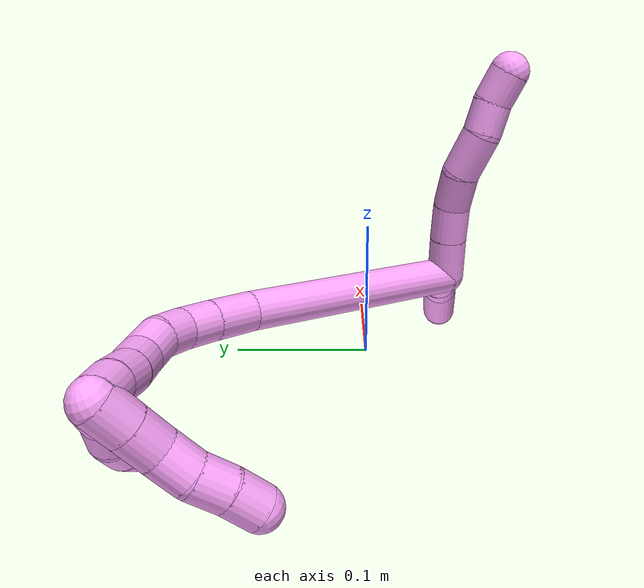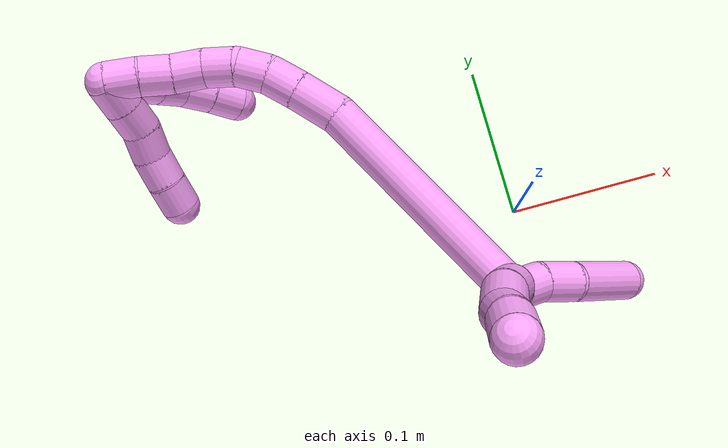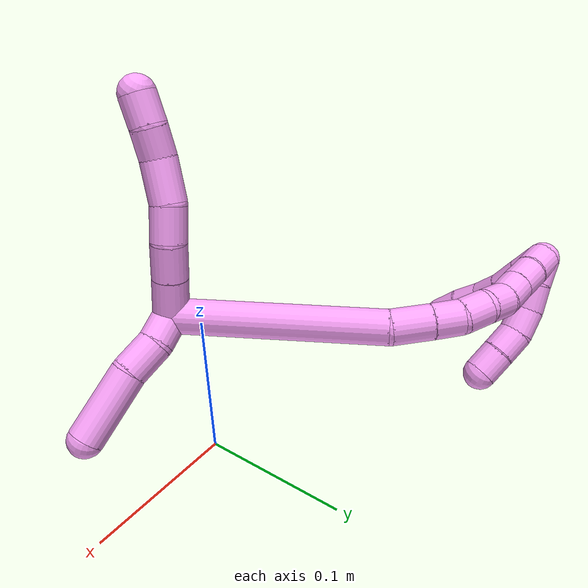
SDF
<sdf version="1.7">
 <world name="default">
  <model name="photoneo_s_sensor">
   <static>1</static>
   <pose>0 0 2 1.57079 1.57079 3.14159</pose>
   <link name="link">
    <inertial><mass>0.1</mass></inertial>
    <sensor name="sensor" type="depth">
     <update_rate>30</update_rate>
     <camera>
      <horizontal_fov>1.22</horizontal_fov>
      <image><width>1920</width><height>1200</height><format>B8G8R8</format></image>
      <clip><near>0.1</near><far>4</far></clip>
      <depth_camera><output>points</output></depth_camera>
     </camera>
     <plugin name="camera_plugin" filename="libgazebo_ros_depth_camera.so">
      <baseline>0.2</baseline>
      <alwaysOn>1</alwaysOn>
      <updateRate>0.0</updateRate>
      <cameraName>camera_ir</cameraName>
      <imageTopicName>/camera/color/image_raw</imageTopicName>
      <cameraInfoTopicName>/camera/color/camera_info</cameraInfoTopicName>
      <depthImageTopicName>/camera/depth/image_raw</depthImageTopicName>
      <depthImageCameraInfoTopicName>/camera/depth/camera_info</depthImageCameraInfoTopicName>
      <pointCloudTopicName>/camera/depth/points</pointCloudTopicName>
      <frameName>fr_optical</frameName>
      <pointCloudCutoff>0.1</pointCloudCutoff>
      <pointCloudCutoffMax>2.0</pointCloudCutoffMax>
      <distortionK1>0</distortionK1>
      <distortionK2>0</distortionK2>
      <distortionK3>0</distortionK3>
      <distortionT1>0</distortionT1>
      <distortionT2>0</distortionT2>
      <CxPrime>0</CxPrime>
      <Cx>0</Cx>
      <Cy>0</Cy>
      <focalLength>0</focalLength>
      <hackBaseline>0</hackBaseline>
     </plugin>
    </sensor>
   </link>
  </model>
  <model name="bin">
   <static>1</static>
   <link name="bottom">
    <collision name="collision-bottom">
     <pose>0 0 -0.01 0 -0 0</pose>
     <geometry><box><size>0.8 0.6 0.02</size></box></geometry>
     <surface>
      <friction><ode><mu>100</mu><mu2>100</mu2></ode></friction>
      <contact><collide_bitmask>65535</collide_bitmask></contact>
     </surface>
    </collision>
   </link>
   <link name="west_wall">
    <collision name="collision-west_wall">
     <pose>-0.41 0 0.1 0 -0 0</pose>
     <geometry><box><size>0.02 0.6 0.2</size></box></geometry>
     <surface>
      <friction><ode><mu>100</mu><mu2>100</mu2></ode></friction>
      <contact><collide_bitmask>65535</collide_bitmask></contact>
     </surface>
    </collision>
   </link>
   <link name="east_wall">
    <collision name="collision-east_wall">
     <pose>0.41 0 0.1 0 -0 0</pose>
     <geometry><box><size>0.02 0.6 0.2</size></box></geometry>
     <surface>
      <friction><ode><mu>100</mu><mu2>100</mu2></ode></friction>
      <contact><collide_bitmask>65535</collide_bitmask></contact>
     </surface>
    </collision>
   </link>
   <link name="south_wall">
    <collision name="collision-south_wall">
     <pose>0 -0.31 0.1 0 -0 0</pose>
     <geometry><box><size>0.8 0.02 0.2</size></box></geometry>
     <surface>
      <friction><ode><mu>100</mu><mu2>100</mu2></ode></friction>
      <contact><collide_bitmask>65535</collide_bitmask></contact>
     </surface>
    </collision>
   </link>
   <link name="north_wall">
    <collision name="collision-north_wall">
     <pose>0 0.31 0.1 0 -0 0</pose>
     <geometry><box><size>0.8 0.02 0.2</size></box></geometry>
     <surface>
      <friction><ode><mu>100</mu><mu2>100</mu2></ode></friction>
      <contact><collide_bitmask>65535</collide_bitmask></contact>
     </surface>
    </collision>
   </link>
  </model>
  <model name="4">
   <static>0</static>
   <link name="4">
    <collision name="collision-cylinder-e_1_2_8">
     <pose>0.000207 -0.005579 0.013295 0.397347 0.014352 0.00289</pose>
     <geometry><cylinder><radius>0.0125</radius><length>0.028839</length></cylinder></geometry>
     <surface>
      <friction><ode><mu>1.16</mu><mu2>1.16</mu2><slip1>0</slip1><slip2>0</slip2></ode></friction>
      <contact><ode><kp>1e+06</kp><kd>1</kd><max_vel>0</max_vel><min_depth>0.001</min_depth></ode></contact>
     </surface>
    </collision>
    <visual name="visual-cylinder-e_1_2_8">
     <pose>0.000207 -0.005579 0.013295 0.397347 0.014352 0.00289</pose>
     <geometry><cylinder><radius>0.0125</radius><length>0.028839</length></cylinder></geometry>
     <material><ambient>1 0.65098 0.996078 1</ambient></material>
    </visual>
    <collision name="collision-cylinder-e_2_8_9">
     <pose>0.000483 -0.016383 0.037907 0.432435 0.005512 0.001211</pose>
     <geometry><cylinder><radius>0.0125</radius><length>0.02493</length></cylinder></geometry>
     <surface>
      <friction><ode><mu>1.16</mu><mu2>1.16</mu2><slip1>0</slip1><slip2>0</slip2></ode></friction>
      <contact><ode><kp>1e+06</kp><kd>1</kd><max_vel>0</max_vel><min_depth>0.001</min_depth></ode></contact>
     </surface>
    </collision>
    <visual name="visual-cylinder-e_2_8_9">
     <pose>0.000483 -0.016383 0.037907 0.432435 0.005512 0.001211</pose>
     <geometry><cylinder><radius>0.0125</radius><length>0.02493</length></cylinder></geometry>
     <material><ambient>1 0.65098 0.996078 1</ambient></material>
    </visual>
    <collision name="collision-cylinder-e_3_9_10">
     <pose>-0.001339 -0.027899 0.059771 0.537954 -0.152757 -0.042184</pose>
     <geometry><cylinder><radius>0.0125</radius><length>0.024852</length></cylinder></geometry>
     <surface>
      <friction><ode><mu>1.16</mu><mu2>1.16</mu2><slip1>0</slip1><slip2>0</slip2></ode></friction>
      <contact><ode><kp>1e+06</kp><kd>1</kd><max_vel>0</max_vel><min_depth>0.001</min_depth></ode></contact>
     </surface>
    </collision>
    <visual name="visual-cylinder-e_3_9_10">
     <pose>-0.001339 -0.027899 0.059771 0.537954 -0.152757 -0.042184</pose>
     <geometry><cylinder><radius>0.0125</radius><length>0.024852</length></cylinder></geometry>
     <material><ambient>1 0.65098 0.996078 1</ambient></material>
    </visual>
    <collision name="collision-cylinder-e_4_10_11">
     <pose>-0.00445 -0.04479 0.080931 0.784715 -0.081159 -0.0336</pose>
     <geometry><cylinder><radius>0.0125</radius><length>0.030098</length></cylinder></geometry>
     <surface>
      <friction><ode><mu>1.16</mu><mu2>1.16</mu2><slip1>0</slip1><slip2>0</slip2></ode></friction>
      <contact><ode><kp>1e+06</kp><kd>1</kd><max_vel>0</max_vel><min_depth>0.001</min_depth></ode></contact>
     </surface>
    </collision>
    <visual name="visual-cylinder-e_4_10_11">
     <pose>-0.00445 -0.04479 0.080931 0.784715 -0.081159 -0.0336</pose>
     <geometry><cylinder><radius>0.0125</radius><length>0.030098</length></cylinder></geometry>
     <material><ambient>1 0.65098 0.996078 1</ambient></material>
    </visual>
    <collision name="collision-cylinder-e_5_11_12">
     <pose>-0.004251 -0.06166 0.099539 0.665087 0.138763 0.047992</pose>
     <geometry><cylinder><radius>0.0125</radius><length>0.020518</length></cylinder></geometry>
     <surface>
      <friction><ode><mu>1.16</mu><mu2>1.16</mu2><slip1>0</slip1><slip2>0</slip2></ode></friction>
      <contact><ode><kp>1e+06</kp><kd>1</kd><max_vel>0</max_vel><min_depth>0.001</min_depth></ode></contact>
     </surface>
    </collision>
    <visual name="visual-cylinder-e_5_11_12">
     <pose>-0.004251 -0.06166 0.099539 0.665087 0.138763 0.047992</pose>
     <geometry><cylinder><radius>0.0125</radius><length>0.020518</length></cylinder></geometry>
     <material><ambient>1 0.65098 0.996078 1</ambient></material>
    </visual>
    <collision name="collision-cylinder-e_6_12_6">
     <pose>-0.002544 -0.075629 0.114493 0.835848 0.027783 0.012339</pose>
     <geometry><cylinder><radius>0.0125</radius><length>0.020763</length></cylinder></geometry>
     <surface>
      <friction><ode><mu>1.16</mu><mu2>1.16</mu2><slip1>0</slip1><slip2>0</slip2></ode></friction>
      <contact><ode><kp>1e+06</kp><kd>1</kd><max_vel>0</max_vel><min_depth>0.001</min_depth></ode></contact>
     </surface>
    </collision>
    <visual name="visual-cylinder-e_6_12_6">
     <pose>-0.002544 -0.075629 0.114493 0.835848 0.027783 0.012339</pose>
     <geometry><cylinder><radius>0.0125</radius><length>0.020763</length></cylinder></geometry>
     <material><ambient>1 0.65098 0.996078 1</ambient></material>
    </visual>
    <collision name="collision-cylinder-e_1_2_13">
     <pose>0.008205 0.003647 -0.006215 -2.6109 0.850172 -2.0603</pose>
     <geometry><cylinder><radius>0.0125</radius><length>0.02184</length></cylinder></geometry>
     <surface>
      <friction><ode><mu>1.16</mu><mu2>1.16</mu2><slip1>0</slip1><slip2>0</slip2></ode></friction>
      <contact><ode><kp>1e+06</kp><kd>1</kd><max_vel>0</max_vel><min_depth>0.001</min_depth></ode></contact>
     </surface>
    </collision>
    <visual name="visual-cylinder-e_1_2_13">
     <pose>0.008205 0.003647 -0.006215 -2.6109 0.850172 -2.0603</pose>
     <geometry><cylinder><radius>0.0125</radius><length>0.02184</length></cylinder></geometry>
     <material><ambient>1 0.65098 0.996078 1</ambient></material>
    </visual>
    <collision name="collision-cylinder-e_2_13_14">
     <pose>0.026449 0.008272 -0.020481 -3.02067 0.891233 -2.88948</pose>
     <geometry><cylinder><radius>0.0125</radius><length>0.025811</length></cylinder></geometry>
     <surface>
      <friction><ode><mu>1.16</mu><mu2>1.16</mu2><slip1>0</slip1><slip2>0</slip2></ode></friction>
      <contact><ode><kp>1e+06</kp><kd>1</kd><max_vel>0</max_vel><min_depth>0.001</min_depth></ode></contact>
     </surface>
    </collision>
    <visual name="visual-cylinder-e_2_13_14">
     <pose>0.026449 0.008272 -0.020481 -3.02067 0.891233 -2.88948</pose>
     <geometry><cylinder><radius>0.0125</radius><length>0.025811</length></cylinder></geometry>
     <material><ambient>1 0.65098 0.996078 1</ambient></material>
    </visual>
    <collision name="collision-cylinder-e_3_14_5">
     <pose>0.053337 0.014221 -0.047935 -2.89084 0.699377 -2.47608</pose>
     <geometry><cylinder><radius>0.0125</radius><length>0.052348</length></cylinder></geometry>
     <surface>
      <friction><ode><mu>1.16</mu><mu2>1.16</mu2><slip1>0</slip1><slip2>0</slip2></ode></friction>
      <contact><ode><kp>1e+06</kp><kd>1</kd><max_vel>0</max_vel><min_depth>0.001</min_depth></ode></contact>
     </surface>
    </collision>
    <visual name="visual-cylinder-e_3_14_5">
     <pose>0.053337 0.014221 -0.047935 -2.89084 0.699377 -2.47608</pose>
     <geometry><cylinder><radius>0.0125</radius><length>0.052348</length></cylinder></geometry>
     <material><ambient>1 0.65098 0.996078 1</ambient></material>
    </visual>
    <collision name="collision-cylinder-e_1_2_15">
     <pose>-0.036134 0.058239 0.030623 -1.08671 -0.502198 0.307424</pose>
     <geometry><cylinder><radius>0.0125</radius><length>0.150135</length></cylinder></geometry>
     <surface>
      <friction><ode><mu>1.16</mu><mu2>1.16</mu2><slip1>0</slip1><slip2>0</slip2></ode></friction>
      <contact><ode><kp>1e+06</kp><kd>1</kd><max_vel>0</max_vel><min_depth>0.001</min_depth></ode></contact>
     </surface>
    </collision>
    <visual name="visual-cylinder-e_1_2_15">
     <pose>-0.036134 0.058239 0.030623 -1.08671 -0.502198 0.307424</pose>
     <geometry><cylinder><radius>0.0125</radius><length>0.150135</length></cylinder></geometry>
     <material><ambient>1 0.65098 0.996078 1</ambient></material>
    </visual>
    <collision name="collision-cylinder-e_2_15_16">
     <pose>-0.081989 0.125194 0.06742 -0.954464 -0.738347 0.394929</pose>
     <geometry><cylinder><radius>0.0125</radius><length>0.028886</length></cylinder></geometry>
     <surface>
      <friction><ode><mu>1.16</mu><mu2>1.16</mu2><slip1>0</slip1><slip2>0</slip2></ode></friction>
      <contact><ode><kp>1e+06</kp><kd>1</kd><max_vel>0</max_vel><min_depth>0.001</min_depth></ode></contact>
     </surface>
    </collision>
    <visual name="visual-cylinder-e_2_15_16">
     <pose>-0.081989 0.125194 0.06742 -0.954464 -0.738347 0.394929</pose>
     <geometry><cylinder><radius>0.0125</radius><length>0.028886</length></cylinder></geometry>
     <material><ambient>1 0.65098 0.996078 1</ambient></material>
    </visual>
    <collision name="collision-cylinder-e_3_16_17">
     <pose>-0.099053 0.139904 0.077893 -0.948634 -0.783175 0.4178</pose>
     <geometry><cylinder><radius>0.0125</radius><length>0.020816</length></cylinder></geometry>
     <surface>
      <friction><ode><mu>1.16</mu><mu2>1.16</mu2><slip1>0</slip1><slip2>0</slip2></ode></friction>
      <contact><ode><kp>1e+06</kp><kd>1</kd><max_vel>0</max_vel><min_depth>0.001</min_depth></ode></contact>
     </surface>
    </collision>
    <visual name="visual-cylinder-e_3_16_17">
     <pose>-0.099053 0.139904 0.077893 -0.948634 -0.783175 0.4178</pose>
     <geometry><cylinder><radius>0.0125</radius><length>0.020816</length></cylinder></geometry>
     <material><ambient>1 0.65098 0.996078 1</ambient></material>
    </visual>
    <collision name="collision-cylinder-e_4_17_18">
     <pose>-0.114948 0.149194 0.086211 -0.686873 -1.02456 0.396911</pose>
     <geometry><cylinder><radius>0.0125</radius><length>0.020015</length></cylinder></geometry>
     <surface>
      <friction><ode><mu>1.16</mu><mu2>1.16</mu2><slip1>0</slip1><slip2>0</slip2></ode></friction>
      <contact><ode><kp>1e+06</kp><kd>1</kd><max_vel>0</max_vel><min_depth>0.001</min_depth></ode></contact>
     </surface>
    </collision>
    <visual name="visual-cylinder-e_4_17_18">
     <pose>-0.114948 0.149194 0.086211 -0.686873 -1.02456 0.396911</pose>
     <geometry><cylinder><radius>0.0125</radius><length>0.020015</length></cylinder></geometry>
     <material><ambient>1 0.65098 0.996078 1</ambient></material>
    </visual>
    <collision name="collision-cylinder-e_5_18_19">
     <pose>-0.133213 0.154721 0.091317 -1.1177 -1.3208 0.904337</pose>
     <geometry><cylinder><radius>0.0125</radius><length>0.02005</length></cylinder></geometry>
     <surface>
      <friction><ode><mu>1.16</mu><mu2>1.16</mu2><slip1>0</slip1><slip2>0</slip2></ode></friction>
      <contact><ode><kp>1e+06</kp><kd>1</kd><max_vel>0</max_vel><min_depth>0.001</min_depth></ode></contact>
     </surface>
    </collision>
    <visual name="visual-cylinder-e_5_18_19">
     <pose>-0.133213 0.154721 0.091317 -1.1177 -1.3208 0.904337</pose>
     <geometry><cylinder><radius>0.0125</radius><length>0.02005</length></cylinder></geometry>
     <material><ambient>1 0.65098 0.996078 1</ambient></material>
    </visual>
    <collision name="collision-cylinder-e_6_19_20">
     <pose>-0.152726 0.156473 0.094537 0.220187 -1.35118 -0.176711</pose>
     <geometry><cylinder><radius>0.0125</radius><length>0.020082</length></cylinder></geometry>
     <surface>
      <friction><ode><mu>1.16</mu><mu2>1.16</mu2><slip1>0</slip1><slip2>0</slip2></ode></friction>
      <contact><ode><kp>1e+06</kp><kd>1</kd><max_vel>0</max_vel><min_depth>0.001</min_depth></ode></contact>
     </surface>
    </collision>
    <visual name="visual-cylinder-e_6_19_20">
     <pose>-0.152726 0.156473 0.094537 0.220187 -1.35118 -0.176711</pose>
     <geometry><cylinder><radius>0.0125</radius><length>0.020082</length></cylinder></geometry>
     <material><ambient>1 0.65098 0.996078 1</ambient></material>
    </visual>
    <collision name="collision-cylinder-e_7_20_21">
     <pose>-0.171915 0.155901 0.100115 0.027268 -1.21919 -0.019042</pose>
     <geometry><cylinder><radius>0.0125</radius><length>0.020001</length></cylinder></geometry>
     <surface>
      <friction><ode><mu>1.16</mu><mu2>1.16</mu2><slip1>0</slip1><slip2>0</slip2></ode></friction>
      <contact><ode><kp>1e+06</kp><kd>1</kd><max_vel>0</max_vel><min_depth>0.001</min_depth></ode></contact>
     </surface>
    </collision>
    <visual name="visual-cylinder-e_7_20_21">
     <pose>-0.171915 0.155901 0.100115 0.027268 -1.21919 -0.019042</pose>
     <geometry><cylinder><radius>0.0125</radius><length>0.020001</length></cylinder></geometry>
     <material><ambient>1 0.65098 0.996078 1</ambient></material>
    </visual>
    <collision name="collision-cylinder-e_8_21_1">
     <pose>-0.191019 0.155544 0.105943 0.109913 -1.32864 -0.086101</pose>
     <geometry><cylinder><radius>0.0125</radius><length>0.020014</length></cylinder></geometry>
     <surface>
      <friction><ode><mu>1.16</mu><mu2>1.16</mu2><slip1>0</slip1><slip2>0</slip2></ode></friction>
      <contact><ode><kp>1e+06</kp><kd>1</kd><max_vel>0</max_vel><min_depth>0.001</min_depth></ode></contact>
     </surface>
    </collision>
    <visual name="visual-cylinder-e_8_21_1">
     <pose>-0.191019 0.155544 0.105943 0.109913 -1.32864 -0.086101</pose>
     <geometry><cylinder><radius>0.0125</radius><length>0.020014</length></cylinder></geometry>
     <material><ambient>1 0.65098 0.996078 1</ambient></material>
    </visual>
    <collision name="collision-cylinder-e_1_1_22">
     <pose>-0.195162 0.158933 0.100871 -2.68623 0.59102 -1.84044</pose>
     <geometry><cylinder><radius>0.0125</radius><length>0.02</length></cylinder></geometry>
     <surface>
      <friction><ode><mu>1.16</mu><mu2>1.16</mu2><slip1>0</slip1><slip2>0</slip2></ode></friction>
      <contact><ode><kp>1e+06</kp><kd>1</kd><max_vel>0</max_vel><min_depth>0.001</min_depth></ode></contact>
     </surface>
    </collision>
    <visual name="visual-cylinder-e_1_1_22">
     <pose>-0.195162 0.158933 0.100871 -2.68623 0.59102 -1.84044</pose>
     <geometry><cylinder><radius>0.0125</radius><length>0.02</length></cylinder></geometry>
     <material><ambient>1 0.65098 0.996078 1</ambient></material>
    </visual>
    <collision name="collision-cylinder-e_2_22_23">
     <pose>-0.185994 0.166589 0.084985 -2.69803 0.367762 -1.37936</pose>
     <geometry><cylinder><radius>0.0125</radius><length>0.02</length></cylinder></geometry>
     <surface>
      <friction><ode><mu>1.16</mu><mu2>1.16</mu2><slip1>0</slip1><slip2>0</slip2></ode></friction>
      <contact><ode><kp>1e+06</kp><kd>1</kd><max_vel>0</max_vel><min_depth>0.001</min_depth></ode></contact>
     </surface>
    </collision>
    <visual name="visual-cylinder-e_2_22_23">
     <pose>-0.185994 0.166589 0.084985 -2.69803 0.367762 -1.37936</pose>
     <geometry><cylinder><radius>0.0125</radius><length>0.02</length></cylinder></geometry>
     <material><ambient>1 0.65098 0.996078 1</ambient></material>
    </visual>
    <collision name="collision-cylinder-e_3_23_24">
     <pose>-0.176542 0.173298 0.068916 -2.80135 0.625789 -2.16536</pose>
     <geometry><cylinder><radius>0.0125</radius><length>0.02</length></cylinder></geometry>
     <surface>
      <friction><ode><mu>1.16</mu><mu2>1.16</mu2><slip1>0</slip1><slip2>0</slip2></ode></friction>
      <contact><ode><kp>1e+06</kp><kd>1</kd><max_vel>0</max_vel><min_depth>0.001</min_depth></ode></contact>
     </surface>
    </collision>
    <visual name="visual-cylinder-e_3_23_24">
     <pose>-0.176542 0.173298 0.068916 -2.80135 0.625789 -2.16536</pose>
     <geometry><cylinder><radius>0.0125</radius><length>0.02</length></cylinder></geometry>
     <material><ambient>1 0.65098 0.996078 1</ambient></material>
    </visual>
    <collision name="collision-cylinder-e_4_24_25">
     <pose>-0.163595 0.176027 0.054223 -3.13824 0.78793 -3.13352</pose>
     <geometry><cylinder><radius>0.0125</radius><length>0.02</length></cylinder></geometry>
     <surface>
      <friction><ode><mu>1.16</mu><mu2>1.16</mu2><slip1>0</slip1><slip2>0</slip2></ode></friction>
      <contact><ode><kp>1e+06</kp><kd>1</kd><max_vel>0</max_vel><min_depth>0.001</min_depth></ode></contact>
     </surface>
    </collision>
    <visual name="visual-cylinder-e_4_24_25">
     <pose>-0.163595 0.176027 0.054223 -3.13824 0.78793 -3.13352</pose>
     <geometry><cylinder><radius>0.0125</radius><length>0.02</length></cylinder></geometry>
     <material><ambient>1 0.65098 0.996078 1</ambient></material>
    </visual>
    <collision name="collision-cylinder-e_5_25_4">
     <pose>-0.149988 0.175907 0.039588 3.12264 0.710062 3.09048</pose>
     <geometry><cylinder><radius>0.0125</radius><length>0.02</length></cylinder></geometry>
     <surface>
      <friction><ode><mu>1.16</mu><mu2>1.16</mu2><slip1>0</slip1><slip2>0</slip2></ode></friction>
      <contact><ode><kp>1e+06</kp><kd>1</kd><max_vel>0</max_vel><min_depth>0.001</min_depth></ode></contact>
     </surface>
    </collision>
    <visual name="visual-cylinder-e_5_25_4">
     <pose>-0.149988 0.175907 0.039588 3.12264 0.710062 3.09048</pose>
     <geometry><cylinder><radius>0.0125</radius><length>0.02</length></cylinder></geometry>
     <material><ambient>1 0.65098 0.996078 1</ambient></material>
    </visual>
    <collision name="collision-cylinder-e_1_1_26">
     <pose>-0.199727 0.152622 0.098741 2.87103 0.100826 0.709982</pose>
     <geometry><cylinder><radius>0.0125</radius><length>0.02</length></cylinder></geometry>
     <surface>
      <friction><ode><mu>1.16</mu><mu2>1.16</mu2><slip1>0</slip1><slip2>0</slip2></ode></friction>
      <contact><ode><kp>1e+06</kp><kd>1</kd><max_vel>0</max_vel><min_depth>0.001</min_depth></ode></contact>
     </surface>
    </collision>
    <visual name="visual-cylinder-e_1_1_26">
     <pose>-0.199727 0.152622 0.098741 2.87103 0.100826 0.709982</pose>
     <geometry><cylinder><radius>0.0125</radius><length>0.02</length></cylinder></geometry>
     <material><ambient>1 0.65098 0.996078 1</ambient></material>
    </visual>
    <collision name="collision-cylinder-e_2_26_27">
     <pose>-0.197664 0.14741 0.079543 2.88202 0.105826 0.770966</pose>
     <geometry><cylinder><radius>0.0125</radius><length>0.02</length></cylinder></geometry>
     <surface>
      <friction><ode><mu>1.16</mu><mu2>1.16</mu2><slip1>0</slip1><slip2>0</slip2></ode></friction>
      <contact><ode><kp>1e+06</kp><kd>1</kd><max_vel>0</max_vel><min_depth>0.001</min_depth></ode></contact>
     </surface>
    </collision>
    <visual name="visual-cylinder-e_2_26_27">
     <pose>-0.197664 0.14741 0.079543 2.88202 0.105826 0.770966</pose>
     <geometry><cylinder><radius>0.0125</radius><length>0.02</length></cylinder></geometry>
     <material><ambient>1 0.65098 0.996078 1</ambient></material>
    </visual>
    <collision name="collision-cylinder-e_3_27_28">
     <pose>-0.197416 0.140603 0.060919 2.70053 -0.080882 -0.357144</pose>
     <geometry><cylinder><radius>0.0125</radius><length>0.02</length></cylinder></geometry>
     <surface>
      <friction><ode><mu>1.16</mu><mu2>1.16</mu2><slip1>0</slip1><slip2>0</slip2></ode></friction>
      <contact><ode><kp>1e+06</kp><kd>1</kd><max_vel>0</max_vel><min_depth>0.001</min_depth></ode></contact>
     </surface>
    </collision>
    <visual name="visual-cylinder-e_3_27_28">
     <pose>-0.197416 0.140603 0.060919 2.70053 -0.080882 -0.357144</pose>
     <geometry><cylinder><radius>0.0125</radius><length>0.02</length></cylinder></geometry>
     <material><ambient>1 0.65098 0.996078 1</ambient></material>
    </visual>
    <collision name="collision-cylinder-e_4_28_29">
     <pose>-0.19726 0.131018 0.043499 2.57653 0.096582 0.329931</pose>
     <geometry><cylinder><radius>0.0125</radius><length>0.02</length></cylinder></geometry>
     <surface>
      <friction><ode><mu>1.16</mu><mu2>1.16</mu2><slip1>0</slip1><slip2>0</slip2></ode></friction>
      <contact><ode><kp>1e+06</kp><kd>1</kd><max_vel>0</max_vel><min_depth>0.001</min_depth></ode></contact>
     </surface>
    </collision>
    <visual name="visual-cylinder-e_4_28_29">
     <pose>-0.19726 0.131018 0.043499 2.57653 0.096582 0.329931</pose>
     <geometry><cylinder><radius>0.0125</radius><length>0.02</length></cylinder></geometry>
     <material><ambient>1 0.65098 0.996078 1</ambient></material>
    </visual>
    <collision name="collision-cylinder-e_5_29_3">
     <pose>-0.19546 0.121347 0.026123 2.69081 0.08367 0.361146</pose>
     <geometry><cylinder><radius>0.0125</radius><length>0.02</length></cylinder></geometry>
     <surface>
      <friction><ode><mu>1.16</mu><mu2>1.16</mu2><slip1>0</slip1><slip2>0</slip2></ode></friction>
      <contact><ode><kp>1e+06</kp><kd>1</kd><max_vel>0</max_vel><min_depth>0.001</min_depth></ode></contact>
     </surface>
    </collision>
    <visual name="visual-cylinder-e_5_29_3">
     <pose>-0.19546 0.121347 0.026123 2.69081 0.08367 0.361146</pose>
     <geometry><cylinder><radius>0.0125</radius><length>0.02</length></cylinder></geometry>
     <material><ambient>1 0.65098 0.996078 1</ambient></material>
    </visual>
    <collision name="collision-sphere-3">
     <pose>-0.194624 0.117005 0.017154 0 -0 0</pose>
     <geometry><sphere><radius>0.0125</radius></sphere></geometry>
     <surface>
      <friction><ode><mu>1.16</mu><mu2>1.16</mu2><slip1>0</slip1><slip2>0</slip2></ode></friction>
      <contact><ode><kp>1e+06</kp><kd>1</kd><max_vel>0</max_vel><min_depth>0.001</min_depth></ode></contact>
     </surface>
    </collision>
    <visual name="visual-sphere-3">
     <pose>-0.194624 0.117005 0.017154 0 -0 0</pose>
     <geometry><sphere><radius>0.0125</radius></sphere></geometry>
     <material><ambient>1 0.65098 0.996078 1</ambient></material>
    </visual>
    <collision name="collision-sphere-29">
     <pose>-0.196295 0.125688 0.035093 0 -0 0</pose>
     <geometry><sphere><radius>0.0125</radius></sphere></geometry>
     <surface>
      <friction><ode><mu>1.16</mu><mu2>1.16</mu2><slip1>0</slip1><slip2>0</slip2></ode></friction>
      <contact><ode><kp>1e+06</kp><kd>1</kd><max_vel>0</max_vel><min_depth>0.001</min_depth></ode></contact>
     </surface>
    </collision>
    <visual name="visual-sphere-29">
     <pose>-0.196295 0.125688 0.035093 0 -0 0</pose>
     <geometry><sphere><radius>0.0125</radius></sphere></geometry>
     <material><ambient>1 0.65098 0.996078 1</ambient></material>
    </visual>
    <collision name="collision-sphere-28">
     <pose>-0.198224 0.136348 0.051905 0 -0 0</pose>
     <geometry><sphere><radius>0.0125</radius></sphere></geometry>
     <surface>
      <friction><ode><mu>1.16</mu><mu2>1.16</mu2><slip1>0</slip1><slip2>0</slip2></ode></friction>
      <contact><ode><kp>1e+06</kp><kd>1</kd><max_vel>0</max_vel><min_depth>0.001</min_depth></ode></contact>
     </surface>
    </collision>
    <visual name="visual-sphere-28">
     <pose>-0.198224 0.136348 0.051905 0 -0 0</pose>
     <geometry><sphere><radius>0.0125</radius></sphere></geometry>
     <material><ambient>1 0.65098 0.996078 1</ambient></material>
    </visual>
    <collision name="collision-sphere-27">
     <pose>-0.196608 0.144858 0.069932 0 -0 0</pose>
     <geometry><sphere><radius>0.0125</radius></sphere></geometry>
     <surface>
      <friction><ode><mu>1.16</mu><mu2>1.16</mu2><slip1>0</slip1><slip2>0</slip2></ode></friction>
      <contact><ode><kp>1e+06</kp><kd>1</kd><max_vel>0</max_vel><min_depth>0.001</min_depth></ode></contact>
     </surface>
    </collision>
    <visual name="visual-sphere-27">
     <pose>-0.196608 0.144858 0.069932 0 -0 0</pose>
     <geometry><sphere><radius>0.0125</radius></sphere></geometry>
     <material><ambient>1 0.65098 0.996078 1</ambient></material>
    </visual>
    <collision name="collision-sphere-26">
     <pose>-0.198721 0.149962 0.089154 0 -0 0</pose>
     <geometry><sphere><radius>0.0125</radius></sphere></geometry>
     <surface>
      <friction><ode><mu>1.16</mu><mu2>1.16</mu2><slip1>0</slip1><slip2>0</slip2></ode></friction>
      <contact><ode><kp>1e+06</kp><kd>1</kd><max_vel>0</max_vel><min_depth>0.001</min_depth></ode></contact>
     </surface>
    </collision>
    <visual name="visual-sphere-26">
     <pose>-0.198721 0.149962 0.089154 0 -0 0</pose>
     <geometry><sphere><radius>0.0125</radius></sphere></geometry>
     <material><ambient>1 0.65098 0.996078 1</ambient></material>
    </visual>
    <collision name="collision-sphere-4">
     <pose>-0.143469 0.175763 0.032006 0 -0 0</pose>
     <geometry><sphere><radius>0.0125</radius></sphere></geometry>
     <surface>
      <friction><ode><mu>1.16</mu><mu2>1.16</mu2><slip1>0</slip1><slip2>0</slip2></ode></friction>
      <contact><ode><kp>1e+06</kp><kd>1</kd><max_vel>0</max_vel><min_depth>0.001</min_depth></ode></contact>
     </surface>
    </collision>
    <visual name="visual-sphere-4">
     <pose>-0.143469 0.175763 0.032006 0 -0 0</pose>
     <geometry><sphere><radius>0.0125</radius></sphere></geometry>
     <material><ambient>1 0.65098 0.996078 1</ambient></material>
    </visual>
    <collision name="collision-sphere-25">
     <pose>-0.156506 0.176051 0.04717 0 -0 0</pose>
     <geometry><sphere><radius>0.0125</radius></sphere></geometry>
     <surface>
      <friction><ode><mu>1.16</mu><mu2>1.16</mu2><slip1>0</slip1><slip2>0</slip2></ode></friction>
      <contact><ode><kp>1e+06</kp><kd>1</kd><max_vel>0</max_vel><min_depth>0.001</min_depth></ode></contact>
     </surface>
    </collision>
    <visual name="visual-sphere-25">
     <pose>-0.156506 0.176051 0.04717 0 -0 0</pose>
     <geometry><sphere><radius>0.0125</radius></sphere></geometry>
     <material><ambient>1 0.65098 0.996078 1</ambient></material>
    </visual>
    <collision name="collision-sphere-24">
     <pose>-0.170684 0.176003 0.061276 0 -0 0</pose>
     <geometry><sphere><radius>0.0125</radius></sphere></geometry>
     <surface>
      <friction><ode><mu>1.16</mu><mu2>1.16</mu2><slip1>0</slip1><slip2>0</slip2></ode></friction>
      <contact><ode><kp>1e+06</kp><kd>1</kd><max_vel>0</max_vel><min_depth>0.001</min_depth></ode></contact>
     </surface>
    </collision>
    <visual name="visual-sphere-24">
     <pose>-0.170684 0.176003 0.061276 0 -0 0</pose>
     <geometry><sphere><radius>0.0125</radius></sphere></geometry>
     <material><ambient>1 0.65098 0.996078 1</ambient></material>
    </visual>
    <collision name="collision-sphere-23">
     <pose>-0.182399 0.170594 0.076557 0 -0 0</pose>
     <geometry><sphere><radius>0.0125</radius></sphere></geometry>
     <surface>
      <friction><ode><mu>1.16</mu><mu2>1.16</mu2><slip1>0</slip1><slip2>0</slip2></ode></friction>
      <contact><ode><kp>1e+06</kp><kd>1</kd><max_vel>0</max_vel><min_depth>0.001</min_depth></ode></contact>
     </surface>
    </collision>
    <visual name="visual-sphere-23">
     <pose>-0.182399 0.170594 0.076557 0 -0 0</pose>
     <geometry><sphere><radius>0.0125</radius></sphere></geometry>
     <material><ambient>1 0.65098 0.996078 1</ambient></material>
    </visual>
    <collision name="collision-sphere-22">
     <pose>-0.18959 0.162585 0.093413 0 -0 0</pose>
     <geometry><sphere><radius>0.0125</radius></sphere></geometry>
     <surface>
      <friction><ode><mu>1.16</mu><mu2>1.16</mu2><slip1>0</slip1><slip2>0</slip2></ode></friction>
      <contact><ode><kp>1e+06</kp><kd>1</kd><max_vel>0</max_vel><min_depth>0.001</min_depth></ode></contact>
     </surface>
    </collision>
    <visual name="visual-sphere-22">
     <pose>-0.18959 0.162585 0.093413 0 -0 0</pose>
     <geometry><sphere><radius>0.0125</radius></sphere></geometry>
     <material><ambient>1 0.65098 0.996078 1</ambient></material>
    </visual>
    <collision name="collision-sphere-1">
     <pose>-0.200734 0.155281 0.108328 0 -0 0</pose>
     <geometry><sphere><radius>0.0125</radius></sphere></geometry>
     <surface>
      <friction><ode><mu>1.16</mu><mu2>1.16</mu2><slip1>0</slip1><slip2>0</slip2></ode></friction>
      <contact><ode><kp>1e+06</kp><kd>1</kd><max_vel>0</max_vel><min_depth>0.001</min_depth></ode></contact>
     </surface>
    </collision>
    <visual name="visual-sphere-1">
     <pose>-0.200734 0.155281 0.108328 0 -0 0</pose>
     <geometry><sphere><radius>0.0125</radius></sphere></geometry>
     <material><ambient>1 0.65098 0.996078 1</ambient></material>
    </visual>
    <collision name="collision-sphere-21">
     <pose>-0.181304 0.155807 0.103558 0 -0 0</pose>
     <geometry><sphere><radius>0.0125</radius></sphere></geometry>
     <surface>
      <friction><ode><mu>1.16</mu><mu2>1.16</mu2><slip1>0</slip1><slip2>0</slip2></ode></friction>
      <contact><ode><kp>1e+06</kp><kd>1</kd><max_vel>0</max_vel><min_depth>0.001</min_depth></ode></contact>
     </surface>
    </collision>
    <visual name="visual-sphere-21">
     <pose>-0.181304 0.155807 0.103558 0 -0 0</pose>
     <geometry><sphere><radius>0.0125</radius></sphere></geometry>
     <material><ambient>1 0.65098 0.996078 1</ambient></material>
    </visual>
    <collision name="collision-sphere-12">
     <pose>-0.002832 -0.06793 0.107534 0 -0 0</pose>
     <geometry><sphere><radius>0.0125</radius></sphere></geometry>
     <surface>
      <friction><ode><mu>1.16</mu><mu2>1.16</mu2><slip1>0</slip1><slip2>0</slip2></ode></friction>
      <contact><ode><kp>1e+06</kp><kd>1</kd><max_vel>0</max_vel><min_depth>0.001</min_depth></ode></contact>
     </surface>
    </collision>
    <visual name="visual-sphere-12">
     <pose>-0.002832 -0.06793 0.107534 0 -0 0</pose>
     <geometry><sphere><radius>0.0125</radius></sphere></geometry>
     <material><ambient>1 0.65098 0.996078 1</ambient></material>
    </visual>
    <collision name="collision-sphere-11">
     <pose>-0.00567 -0.055389 0.091544 0 -0 0</pose>
     <geometry><sphere><radius>0.0125</radius></sphere></geometry>
     <surface>
      <friction><ode><mu>1.16</mu><mu2>1.16</mu2><slip1>0</slip1><slip2>0</slip2></ode></friction>
      <contact><ode><kp>1e+06</kp><kd>1</kd><max_vel>0</max_vel><min_depth>0.001</min_depth></ode></contact>
     </surface>
    </collision>
    <visual name="visual-sphere-11">
     <pose>-0.00567 -0.055389 0.091544 0 -0 0</pose>
     <geometry><sphere><radius>0.0125</radius></sphere></geometry>
     <material><ambient>1 0.65098 0.996078 1</ambient></material>
    </visual>
    <collision name="collision-sphere-10">
     <pose>-0.00323 -0.034192 0.070317 0 -0 0</pose>
     <geometry><sphere><radius>0.0125</radius></sphere></geometry>
     <surface>
      <friction><ode><mu>1.16</mu><mu2>1.16</mu2><slip1>0</slip1><slip2>0</slip2></ode></friction>
      <contact><ode><kp>1e+06</kp><kd>1</kd><max_vel>0</max_vel><min_depth>0.001</min_depth></ode></contact>
     </surface>
    </collision>
    <visual name="visual-sphere-10">
     <pose>-0.00323 -0.034192 0.070317 0 -0 0</pose>
     <geometry><sphere><radius>0.0125</radius></sphere></geometry>
     <material><ambient>1 0.65098 0.996078 1</ambient></material>
    </visual>
    <collision name="collision-sphere-9">
     <pose>0.000551 -0.021606 0.049224 0 -0 0</pose>
     <geometry><sphere><radius>0.0125</radius></sphere></geometry>
     <surface>
      <friction><ode><mu>1.16</mu><mu2>1.16</mu2><slip1>0</slip1><slip2>0</slip2></ode></friction>
      <contact><ode><kp>1e+06</kp><kd>1</kd><max_vel>0</max_vel><min_depth>0.001</min_depth></ode></contact>
     </surface>
    </collision>
    <visual name="visual-sphere-9">
     <pose>0.000551 -0.021606 0.049224 0 -0 0</pose>
     <geometry><sphere><radius>0.0125</radius></sphere></geometry>
     <material><ambient>1 0.65098 0.996078 1</ambient></material>
    </visual>
    <collision name="collision-sphere-2">
     <geometry><sphere><radius>0.0125</radius></sphere></geometry>
     <surface>
      <friction><ode><mu>1.16</mu><mu2>1.16</mu2><slip1>0</slip1><slip2>0</slip2></ode></friction>
      <contact><ode><kp>1e+06</kp><kd>1</kd><max_vel>0</max_vel><min_depth>0.001</min_depth></ode></contact>
     </surface>
    </collision>
    <visual name="visual-sphere-2">
     <geometry><sphere><radius>0.0125</radius></sphere></geometry>
     <material><ambient>1 0.65098 0.996078 1</ambient></material>
    </visual>
    <collision name="collision-sphere-19">
     <pose>-0.142926 0.156951 0.092403 0 -0 0</pose>
     <geometry><sphere><radius>0.0125</radius></sphere></geometry>
     <surface>
      <friction><ode><mu>1.16</mu><mu2>1.16</mu2><slip1>0</slip1><slip2>0</slip2></ode></friction>
      <contact><ode><kp>1e+06</kp><kd>1</kd><max_vel>0</max_vel><min_depth>0.001</min_depth></ode></contact>
     </surface>
    </collision>
    <visual name="visual-sphere-19">
     <pose>-0.142926 0.156951 0.092403 0 -0 0</pose>
     <geometry><sphere><radius>0.0125</radius></sphere></geometry>
     <material><ambient>1 0.65098 0.996078 1</ambient></material>
    </visual>
    <collision name="collision-sphere-8">
     <pose>0.000414 -0.011159 0.02659 0 -0 0</pose>
     <geometry><sphere><radius>0.0125</radius></sphere></geometry>
     <surface>
      <friction><ode><mu>1.16</mu><mu2>1.16</mu2><slip1>0</slip1><slip2>0</slip2></ode></friction>
      <contact><ode><kp>1e+06</kp><kd>1</kd><max_vel>0</max_vel><min_depth>0.001</min_depth></ode></contact>
     </surface>
    </collision>
    <visual name="visual-sphere-8">
     <pose>0.000414 -0.011159 0.02659 0 -0 0</pose>
     <geometry><sphere><radius>0.0125</radius></sphere></geometry>
     <material><ambient>1 0.65098 0.996078 1</ambient></material>
    </visual>
    <collision name="collision-sphere-6">
     <pose>-0.002255 -0.083328 0.121451 0 -0 0</pose>
     <geometry><sphere><radius>0.0125</radius></sphere></geometry>
     <surface>
      <friction><ode><mu>1.16</mu><mu2>1.16</mu2><slip1>0</slip1><slip2>0</slip2></ode></friction>
      <contact><ode><kp>1e+06</kp><kd>1</kd><max_vel>0</max_vel><min_depth>0.001</min_depth></ode></contact>
     </surface>
    </collision>
    <visual name="visual-sphere-6">
     <pose>-0.002255 -0.083328 0.121451 0 -0 0</pose>
     <geometry><sphere><radius>0.0125</radius></sphere></geometry>
     <material><ambient>1 0.65098 0.996078 1</ambient></material>
    </visual>
    <collision name="collision-sphere-13">
     <pose>0.016411 0.007294 -0.012429 0 -0 0</pose>
     <geometry><sphere><radius>0.0125</radius></sphere></geometry>
     <surface>
      <friction><ode><mu>1.16</mu><mu2>1.16</mu2><slip1>0</slip1><slip2>0</slip2></ode></friction>
      <contact><ode><kp>1e+06</kp><kd>1</kd><max_vel>0</max_vel><min_depth>0.001</min_depth></ode></contact>
     </surface>
    </collision>
    <visual name="visual-sphere-13">
     <pose>0.016411 0.007294 -0.012429 0 -0 0</pose>
     <geometry><sphere><radius>0.0125</radius></sphere></geometry>
     <material><ambient>1 0.65098 0.996078 1</ambient></material>
    </visual>
    <collision name="collision-sphere-14">
     <pose>0.036488 0.009251 -0.028532 0 -0 0</pose>
     <geometry><sphere><radius>0.0125</radius></sphere></geometry>
     <surface>
      <friction><ode><mu>1.16</mu><mu2>1.16</mu2><slip1>0</slip1><slip2>0</slip2></ode></friction>
      <contact><ode><kp>1e+06</kp><kd>1</kd><max_vel>0</max_vel><min_depth>0.001</min_depth></ode></contact>
     </surface>
    </collision>
    <visual name="visual-sphere-14">
     <pose>0.036488 0.009251 -0.028532 0 -0 0</pose>
     <geometry><sphere><radius>0.0125</radius></sphere></geometry>
     <material><ambient>1 0.65098 0.996078 1</ambient></material>
    </visual>
    <collision name="collision-sphere-5">
     <pose>0.070187 0.019191 -0.067338 0 -0 0</pose>
     <geometry><sphere><radius>0.0125</radius></sphere></geometry>
     <surface>
      <friction><ode><mu>1.16</mu><mu2>1.16</mu2><slip1>0</slip1><slip2>0</slip2></ode></friction>
      <contact><ode><kp>1e+06</kp><kd>1</kd><max_vel>0</max_vel><min_depth>0.001</min_depth></ode></contact>
     </surface>
    </collision>
    <visual name="visual-sphere-5">
     <pose>0.070187 0.019191 -0.067338 0 -0 0</pose>
     <geometry><sphere><radius>0.0125</radius></sphere></geometry>
     <material><ambient>1 0.65098 0.996078 1</ambient></material>
    </visual>
    <collision name="collision-sphere-15">
     <pose>-0.072268 0.116477 0.061245 0 -0 0</pose>
     <geometry><sphere><radius>0.0125</radius></sphere></geometry>
     <surface>
      <friction><ode><mu>1.16</mu><mu2>1.16</mu2><slip1>0</slip1><slip2>0</slip2></ode></friction>
      <contact><ode><kp>1e+06</kp><kd>1</kd><max_vel>0</max_vel><min_depth>0.001</min_depth></ode></contact>
     </surface>
    </collision>
    <visual name="visual-sphere-15">
     <pose>-0.072268 0.116477 0.061245 0 -0 0</pose>
     <geometry><sphere><radius>0.0125</radius></sphere></geometry>
     <material><ambient>1 0.65098 0.996078 1</ambient></material>
    </visual>
    <collision name="collision-sphere-16">
     <pose>-0.09171 0.13391 0.073594 0 -0 0</pose>
     <geometry><sphere><radius>0.0125</radius></sphere></geometry>
     <surface>
      <friction><ode><mu>1.16</mu><mu2>1.16</mu2><slip1>0</slip1><slip2>0</slip2></ode></friction>
      <contact><ode><kp>1e+06</kp><kd>1</kd><max_vel>0</max_vel><min_depth>0.001</min_depth></ode></contact>
     </surface>
    </collision>
    <visual name="visual-sphere-16">
     <pose>-0.09171 0.13391 0.073594 0 -0 0</pose>
     <geometry><sphere><radius>0.0125</radius></sphere></geometry>
     <material><ambient>1 0.65098 0.996078 1</ambient></material>
    </visual>
    <collision name="collision-sphere-17">
     <pose>-0.106396 0.145897 0.082191 0 -0 0</pose>
     <geometry><sphere><radius>0.0125</radius></sphere></geometry>
     <surface>
      <friction><ode><mu>1.16</mu><mu2>1.16</mu2><slip1>0</slip1><slip2>0</slip2></ode></friction>
      <contact><ode><kp>1e+06</kp><kd>1</kd><max_vel>0</max_vel><min_depth>0.001</min_depth></ode></contact>
     </surface>
    </collision>
    <visual name="visual-sphere-17">
     <pose>-0.106396 0.145897 0.082191 0 -0 0</pose>
     <geometry><sphere><radius>0.0125</radius></sphere></geometry>
     <material><ambient>1 0.65098 0.996078 1</ambient></material>
    </visual>
    <collision name="collision-sphere-18">
     <pose>-0.123499 0.152491 0.090231 0 -0 0</pose>
     <geometry><sphere><radius>0.0125</radius></sphere></geometry>
     <surface>
      <friction><ode><mu>1.16</mu><mu2>1.16</mu2><slip1>0</slip1><slip2>0</slip2></ode></friction>
      <contact><ode><kp>1e+06</kp><kd>1</kd><max_vel>0</max_vel><min_depth>0.001</min_depth></ode></contact>
     </surface>
    </collision>
    <visual name="visual-sphere-18">
     <pose>-0.123499 0.152491 0.090231 0 -0 0</pose>
     <geometry><sphere><radius>0.0125</radius></sphere></geometry>
     <material><ambient>1 0.65098 0.996078 1</ambient></material>
    </visual>
    <collision name="collision-sphere-20">
     <pose>-0.162526 0.155995 0.096672 0 -0 0</pose>
     <geometry><sphere><radius>0.0125</radius></sphere></geometry>
     <surface>
      <friction><ode><mu>1.16</mu><mu2>1.16</mu2><slip1>0</slip1><slip2>0</slip2></ode></friction>
      <contact><ode><kp>1e+06</kp><kd>1</kd><max_vel>0</max_vel><min_depth>0.001</min_depth></ode></contact>
     </surface>
    </collision>
    <visual name="visual-sphere-20">
     <pose>-0.162526 0.155995 0.096672 0 -0 0</pose>
     <geometry><sphere><radius>0.0125</radius></sphere></geometry>
     <material><ambient>1 0.65098 0.996078 1</ambient></material>
    </visual>
    <inertial>
     <pose>-0.078623 0.076267 0.049851 0 -0 0</pose>
     <mass>0.75</mass>
     <inertia>
      <ixx>0.000316</ixx>
      <ixy>0</ixy>
      <ixz>0</ixz>
      <iyy>0.000277</iyy>
      <iyz>0</iyz>
      <izz>-8.9e-05</izz>
     </inertia>
    </inertial>
   </link>
   <pose>-0.024757 -0.055177 0.070621 -0.395507 -0.149607 -0.003743</pose>
  </model>
 </world>
</sdf>
